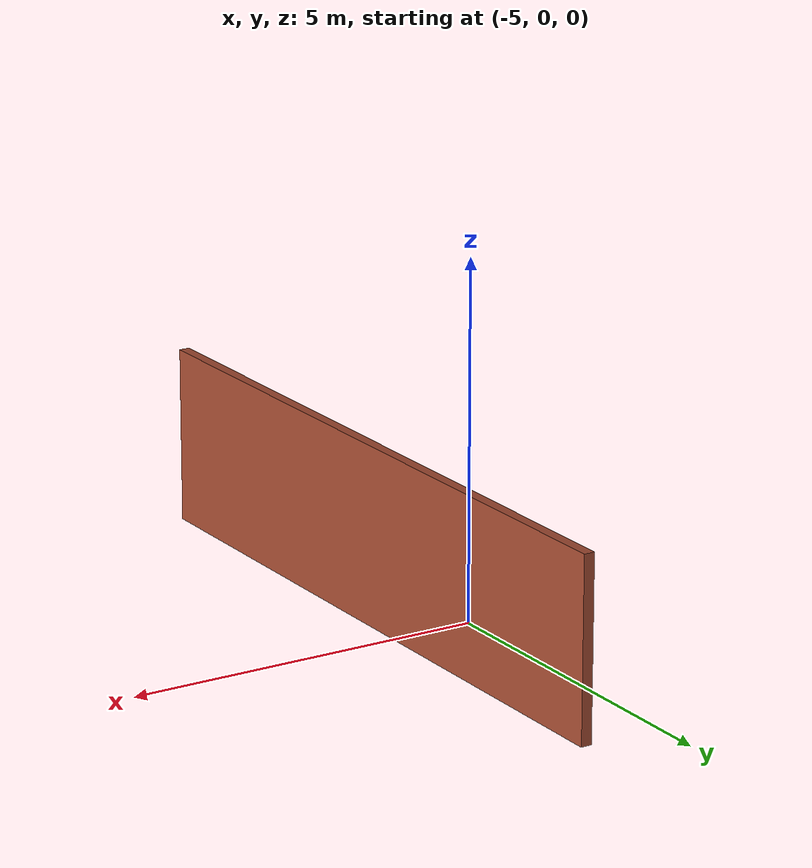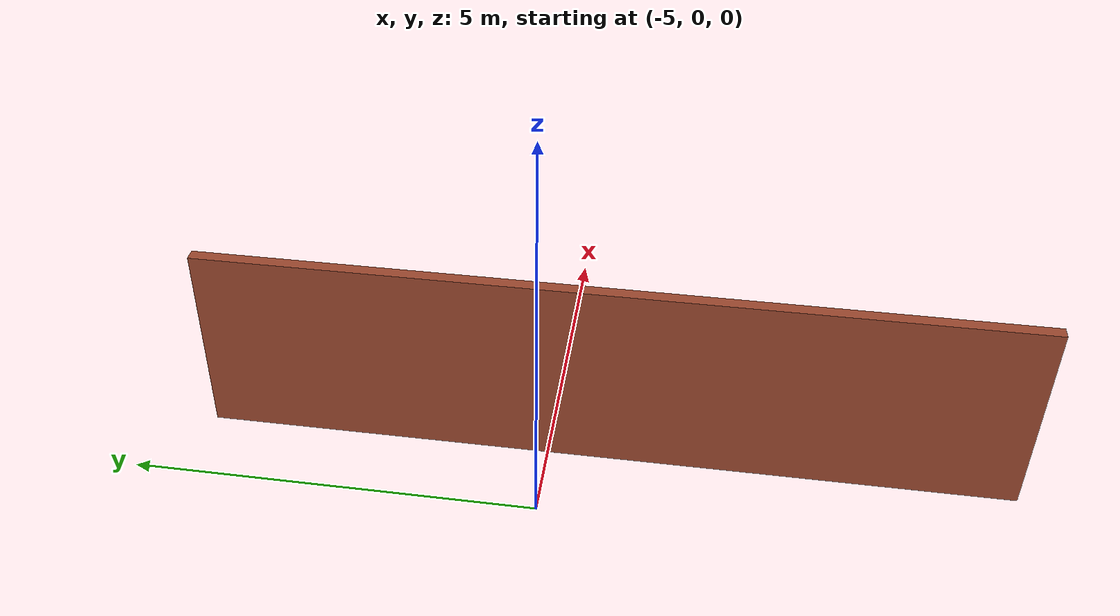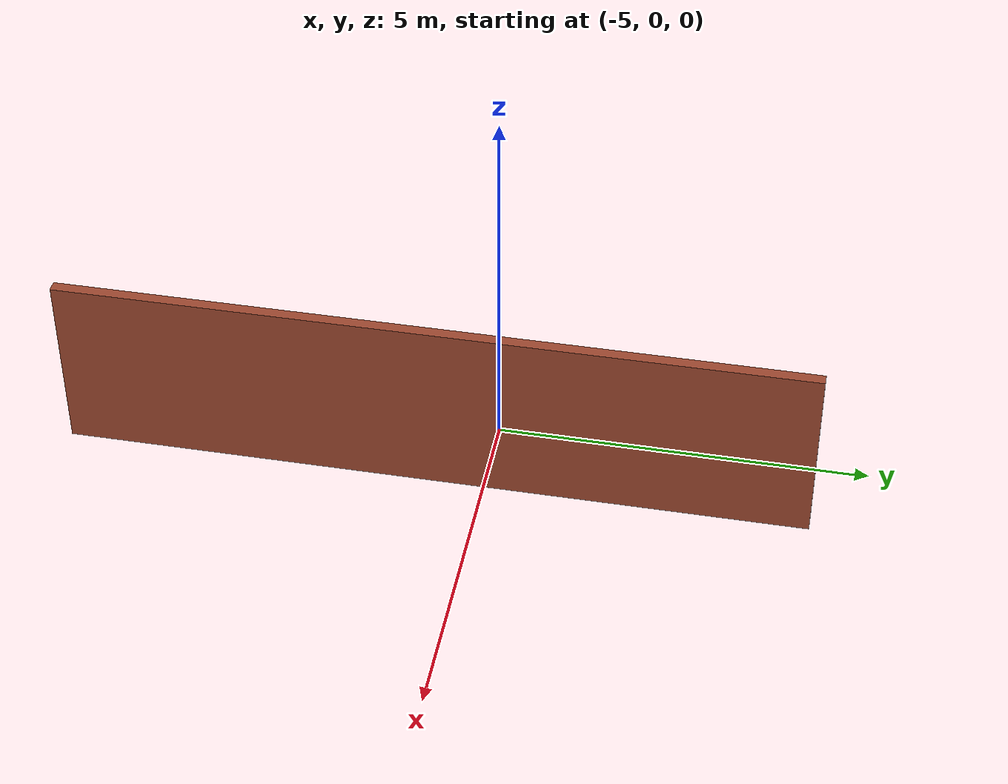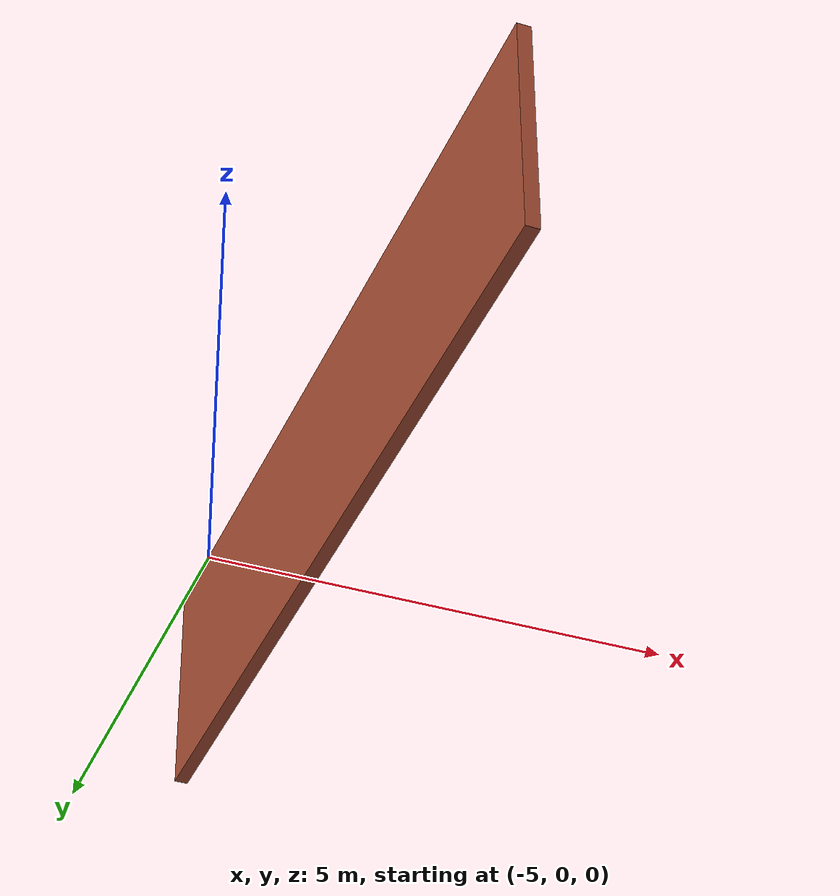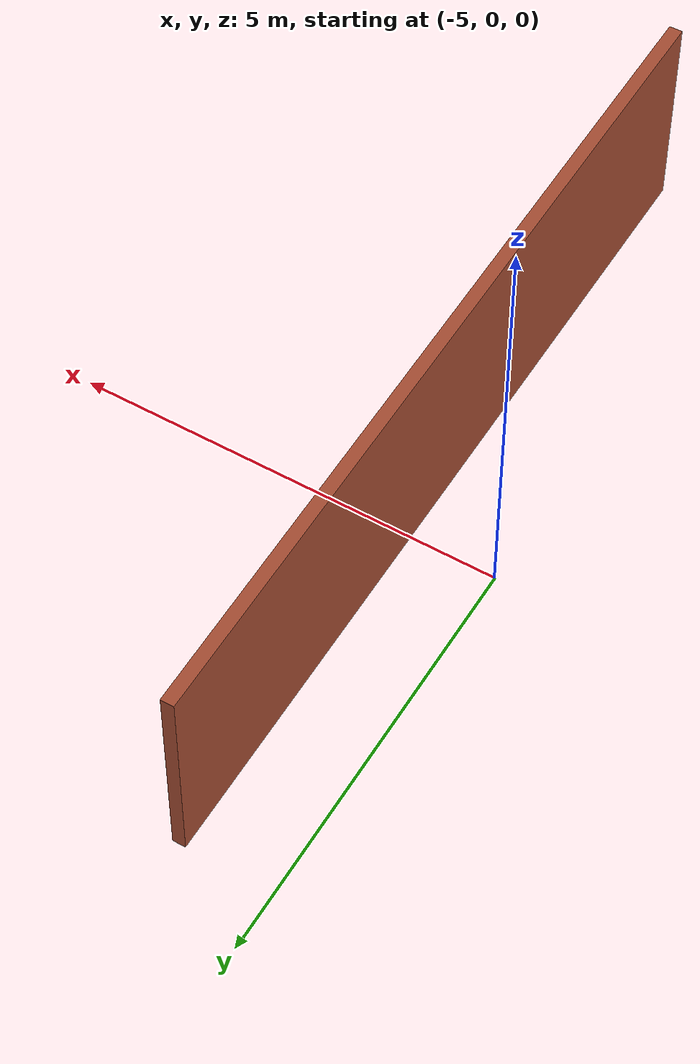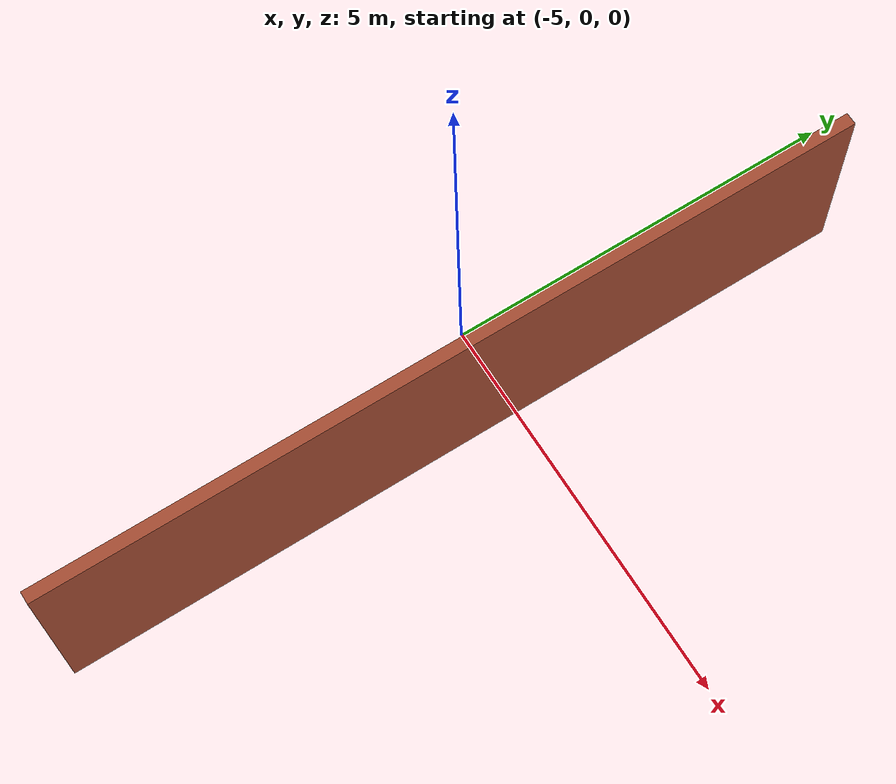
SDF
<?xml version='1.0'?>
<sdf version='1.7'>
  <model name='wall_10m'>
    <pose>-1.99961 -0.685583 0 0 -0 0</pose>
    <link name='Wall_9'>
      <collision name='Wall_9_Collision'>
        <geometry>
          <box>
            <size>10 0.15 2.5</size>
          </box>
        </geometry>
        <pose>0 0 1.25 0 -0 0</pose>
      </collision>
      <visual name='Wall_9_Visual'>
        <pose>0 0 1.25 0 -0 0</pose>
        <geometry>
          <box>
            <size>10 0.15 2.5</size>
          </box>
        </geometry>
        <material>
          <script>
            <uri>file://media/materials/scripts/gazebo.material</uri>
            <name>Gazebo/Bricks</name>
          </script>
          <ambient>1 1 1 1</ambient>
        </material>
        <meta>
          <layer>0</layer>
        </meta>
      </visual>
      <pose>-1.92461 -0 0 0 -0 -1.5708</pose>
    </link>
    <static>1</static>
  </model>
</sdf>
